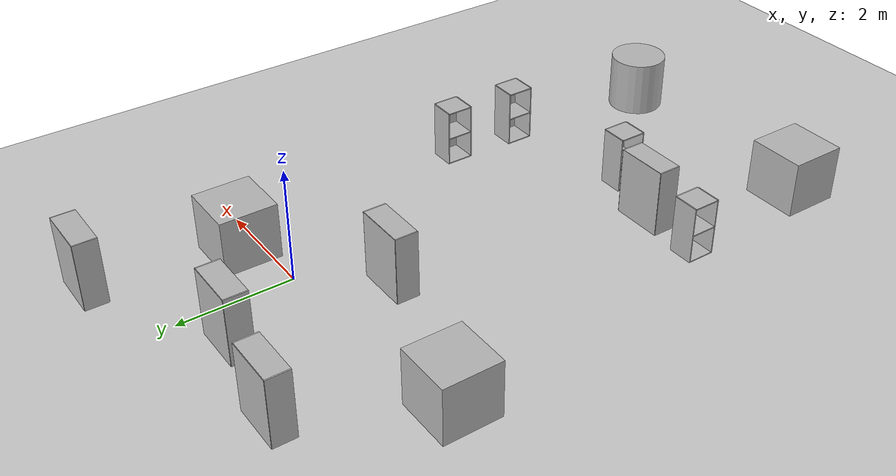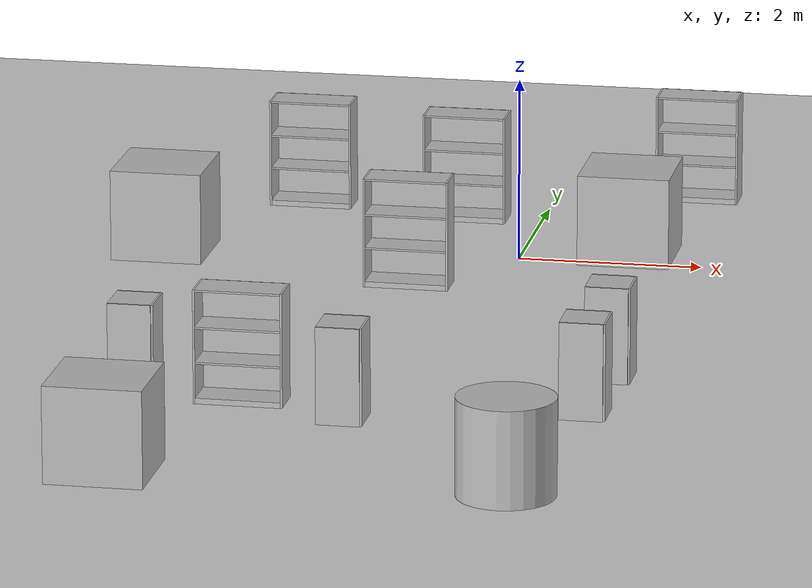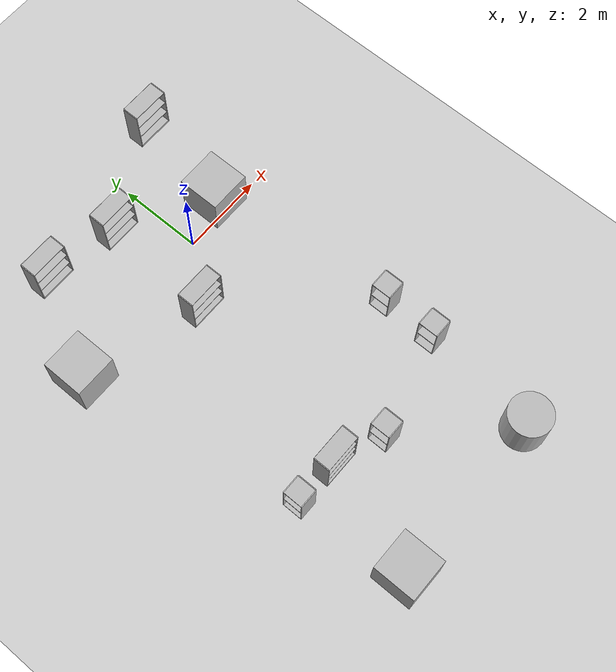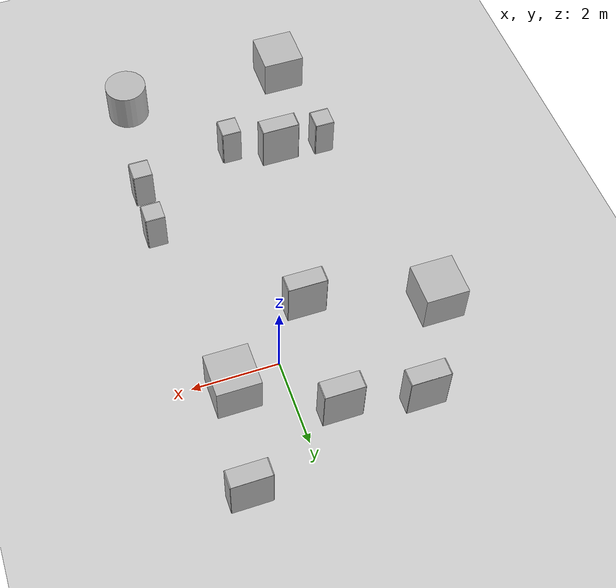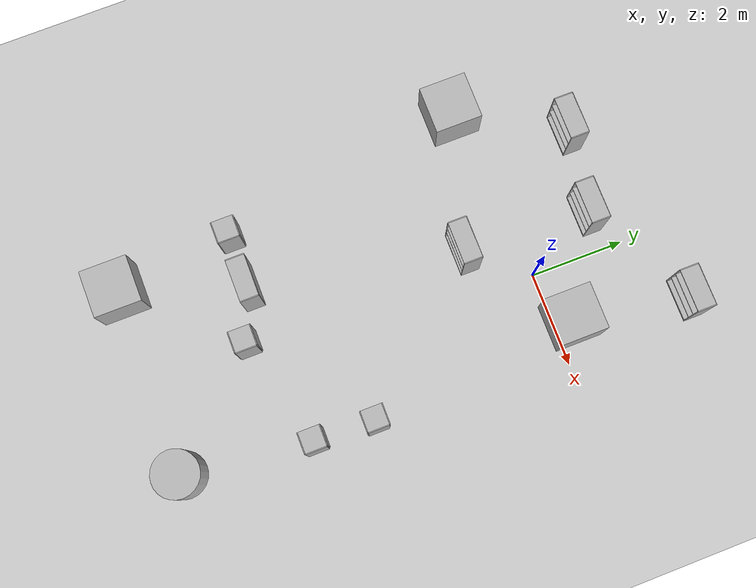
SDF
<sdf version="1.7">
 <world name="default">
  <model name="ground_plane">
   <static>1</static>
   <link name="link">
    <collision name="collision">
     <geometry><plane><normal>0 0 1</normal><size>100 100</size></plane></geometry>
     <surface><friction><ode><mu>100</mu><mu2>50</mu2></ode></friction></surface>
    </collision>
    <visual name="visual">
     <cast_shadows>0</cast_shadows>
     <geometry><plane><normal>0 0 1</normal><size>100 100</size></plane></geometry>
    </visual>
   </link>
  </model>
  <model name="unit_box_1">
   <pose>1.15759 0.350175 0.5 0 -0 0</pose>
   <link name="link">
    <inertial>
     <mass>1</mass>
     <inertia>
      <ixx>0.166667</ixx>
      <ixy>0</ixy>
      <ixz>0</ixz>
      <iyy>0.166667</iyy>
      <iyz>0</iyz>
      <izz>0.166667</izz>
     </inertia>
    </inertial>
    <collision name="collision"><geometry><box><size>1 1 1</size></box></geometry></collision>
    <visual name="visual"><geometry><box><size>1 1 1</size></box></geometry></visual>
   </link>
  </model>
  <model name="bookshelf_3">
   <static>1</static>
   <link name="link">
    <inertial><mass>1</mass></inertial>
    <collision name="back">
     <pose>0 0.005 0.6 0 -0 0</pose>
     <geometry><box><size>0.9 0.01 1.2</size></box></geometry>
    </collision>
    <visual name="visual1">
     <pose>0 0.005 0.6 0 -0 0</pose>
     <geometry><box><size>0.9 0.01 1.2</size></box></geometry>
    </visual>
    <collision name="left_side">
     <pose>0.45 -0.195 0.6 0 -0 0</pose>
     <geometry><box><size>0.02 0.4 1.2</size></box></geometry>
    </collision>
    <visual name="visual2">
     <pose>0.45 -0.195 0.6 0 -0 0</pose>
     <geometry><box><size>0.02 0.4 1.2</size></box></geometry>
    </visual>
    <collision name="right_side">
     <pose>-0.45 -0.195 0.6 0 -0 0</pose>
     <geometry><box><size>0.02 0.4 1.2</size></box></geometry>
    </collision>
    <visual name="visual3">
     <pose>-0.45 -0.195 0.6 0 -0 0</pose>
     <geometry><box><size>0.02 0.4 1.2</size></box></geometry>
    </visual>
    <collision name="bottom">
     <pose>0 -0.195 0.03 0 -0 0</pose>
     <geometry><box><size>0.88 0.4 0.06</size></box></geometry>
    </collision>
    <visual name="visual4">
     <pose>0 -0.195 0.03 0 -0 0</pose>
     <geometry><box><size>0.88 0.4 0.06</size></box></geometry>
    </visual>
    <collision name="top">
     <pose>0 -0.195 1.19 0 -0 0</pose>
     <geometry><box><size>0.88 0.4 0.02</size></box></geometry>
    </collision>
    <visual name="visual5">
     <pose>0 -0.195 1.19 0 -0 0</pose>
     <geometry><box><size>0.88 0.4 0.02</size></box></geometry>
    </visual>
    <collision name="low_shelf">
     <pose>0 -0.195 0.43 0 -0 0</pose>
     <geometry><box><size>0.88 0.4 0.02</size></box></geometry>
    </collision>
    <visual name="visual6">
     <pose>0 -0.195 0.43 0 -0 0</pose>
     <geometry><box><size>0.88 0.4 0.02</size></box></geometry>
    </visual>
    <collision name="high_shelf">
     <pose>0 -0.195 0.8 0 -0 0</pose>
     <geometry><box><size>0.88 0.4 0.02</size></box></geometry>
    </collision>
    <visual name="visual7">
     <pose>0 -0.195 0.8 0 -0 0</pose>
     <geometry><box><size>0.88 0.4 0.02</size></box></geometry>
    </visual>
   </link>
   <pose>-0.852454 1.70987 0 0 -0 0</pose>
  </model>
  <model name="bookshelf_4">
   <static>1</static>
   <link name="link">
    <inertial><mass>1</mass></inertial>
    <collision name="back">
     <pose>0 0.005 0.6 0 -0 0</pose>
     <geometry><box><size>0.9 0.01 1.2</size></box></geometry>
    </collision>
    <visual name="visual1">
     <pose>0 0.005 0.6 0 -0 0</pose>
     <geometry><box><size>0.9 0.01 1.2</size></box></geometry>
    </visual>
    <collision name="left_side">
     <pose>0.45 -0.195 0.6 0 -0 0</pose>
     <geometry><box><size>0.02 0.4 1.2</size></box></geometry>
    </collision>
    <visual name="visual2">
     <pose>0.45 -0.195 0.6 0 -0 0</pose>
     <geometry><box><size>0.02 0.4 1.2</size></box></geometry>
    </visual>
    <collision name="right_side">
     <pose>-0.45 -0.195 0.6 0 -0 0</pose>
     <geometry><box><size>0.02 0.4 1.2</size></box></geometry>
    </collision>
    <visual name="visual3">
     <pose>-0.45 -0.195 0.6 0 -0 0</pose>
     <geometry><box><size>0.02 0.4 1.2</size></box></geometry>
    </visual>
    <collision name="bottom">
     <pose>0 -0.195 0.03 0 -0 0</pose>
     <geometry><box><size>0.88 0.4 0.06</size></box></geometry>
    </collision>
    <visual name="visual4">
     <pose>0 -0.195 0.03 0 -0 0</pose>
     <geometry><box><size>0.88 0.4 0.06</size></box></geometry>
    </visual>
    <collision name="top">
     <pose>0 -0.195 1.19 0 -0 0</pose>
     <geometry><box><size>0.88 0.4 0.02</size></box></geometry>
    </collision>
    <visual name="visual5">
     <pose>0 -0.195 1.19 0 -0 0</pose>
     <geometry><box><size>0.88 0.4 0.02</size></box></geometry>
    </visual>
    <collision name="low_shelf">
     <pose>0 -0.195 0.43 0 -0 0</pose>
     <geometry><box><size>0.88 0.4 0.02</size></box></geometry>
    </collision>
    <visual name="visual6">
     <pose>0 -0.195 0.43 0 -0 0</pose>
     <geometry><box><size>0.88 0.4 0.02</size></box></geometry>
    </visual>
    <collision name="high_shelf">
     <pose>0 -0.195 0.8 0 -0 0</pose>
     <geometry><box><size>0.88 0.4 0.02</size></box></geometry>
    </collision>
    <visual name="visual7">
     <pose>0 -0.195 0.8 0 -0 0</pose>
     <geometry><box><size>0.88 0.4 0.02</size></box></geometry>
    </visual>
   </link>
   <pose>1.56404 2.96614 0 0 -0 0</pose>
  </model>
  <model name="unit_box_2">
   <pose>-2.71932 -8.17499 0.5 0 -0 5e-06</pose>
   <link name="link">
    <inertial>
     <mass>1</mass>
     <inertia>
      <ixx>0.166667</ixx>
      <ixy>0</ixy>
      <ixz>0</ixz>
      <iyy>0.166667</iyy>
      <iyz>0</iyz>
      <izz>0.166667</izz>
     </inertia>
    </inertial>
    <collision name="collision"><geometry><box><size>1 1 1</size></box></geometry></collision>
    <visual name="visual"><geometry><box><size>1 1 1</size></box></geometry></visual>
   </link>
  </model>
  <model name="unit_cylinder_0">
   <pose>1.27501 -8.175 0.5 0 0 -0.005918</pose>
   <link name="link">
    <inertial>
     <mass>1</mass>
     <inertia><ixx>0.145833</ixx><ixy>0</ixy><ixz>0</ixz><iyy>0.145833</iyy><iyz>0</iyz><izz>0.125</izz></inertia>
    </inertial>
    <collision name="collision">
     <geometry><cylinder><radius>0.5</radius><length>1</length></cylinder></geometry>
    </collision>
    <visual name="visual">
     <geometry><cylinder><radius>0.5</radius><length>1</length></cylinder></geometry>
    </visual>
   </link>
  </model>
  <model name="cabinet_2">
   <static>1</static>
   <link name="cabinet_bottom_plate">
    <inertial>
     <pose>0 0 -1 0 -0 0</pose>
     <inertia><ixx>2.05</ixx><ixy>0</ixy><ixz>0</ixz><iyy>2.05</iyy><iyz>0</iyz><izz>2.05</izz></inertia>
     <mass>25</mass>
    </inertial>
    <collision name="cabinet_bottom_plate_geom">
     <pose>0 0 0.01 0 -0 0</pose>
     <geometry><box><size>0.45 0.45 0.02</size></box></geometry>
    </collision>
    <visual name="cabinet_bottom_plate_geom_visual">
     <pose>0 0 0.01 0 -0 0</pose>
     <geometry><box><size>0.45 0.45 0.02</size></box></geometry>
    </visual>
    <collision name="cabinet_bottom_plate_geom_cabinet_back_plate">
     <pose>0.235 0 0.51 0 -0 0</pose>
     <geometry><box><size>0.02 0.45 1.02</size></box></geometry>
    </collision>
    <visual name="cabinet_bottom_plate_geom_cabinet_back_plate_visual">
     <pose>0.235 0 0.51 0 -0 0</pose>
     <geometry><box><size>0.02 0.45 1.02</size></box></geometry>
    </visual>
    <collision name="cabinet_bottom_plate_geom_cabinet_left_plate">
     <pose>0 0.235 0.51 0 -0 0</pose>
     <geometry><box><size>0.45 0.02 1.02</size></box></geometry>
    </collision>
    <visual name="cabinet_bottom_plate_geom_cabinet_left_plate_visual">
     <pose>0 0.235 0.51 0 -0 0</pose>
     <geometry><box><size>0.45 0.02 1.02</size></box></geometry>
    </visual>
    <collision name="cabinet_bottom_plate_geom_cabinet_middle_plate">
     <pose>0 0 0.51 0 -0 0</pose>
     <geometry><box><size>0.45 0.45 0.02</size></box></geometry>
    </collision>
    <visual name="cabinet_bottom_plate_geom_cabinet_middle_plate_visual">
     <pose>0 0 0.51 0 -0 0</pose>
     <geometry><box><size>0.45 0.45 0.02</size></box></geometry>
    </visual>
    <collision name="cabinet_bottom_plate_geom_cabinet_right_plate">
     <pose>0 -0.235 0.51 0 -0 0</pose>
     <geometry><box><size>0.45 0.02 1.02</size></box></geometry>
    </collision>
    <visual name="cabinet_bottom_plate_geom_cabinet_right_plate_visual">
     <pose>0 -0.235 0.51 0 -0 0</pose>
     <geometry><box><size>0.45 0.02 1.02</size></box></geometry>
    </visual>
    <collision name="cabinet_bottom_plate_geom_cabinet_top_plate">
     <pose>0 0 1.01 0 -0 0</pose>
     <geometry><box><size>0.45 0.45 0.02</size></box></geometry>
    </collision>
    <visual name="cabinet_bottom_plate_geom_cabinet_top_plate_visual">
     <pose>0 0 1.01 0 -0 0</pose>
     <geometry><box><size>0.45 0.45 0.02</size></box></geometry>
    </visual>
   </link>
   <pose>-2.99524 -5.62279 0 0 -0 0</pose>
  </model>
  <model name="bookshelf_5">
   <static>1</static>
   <link name="link">
    <inertial><mass>1</mass></inertial>
    <collision name="back">
     <pose>0 0.005 0.6 0 -0 0</pose>
     <geometry><box><size>0.9 0.01 1.2</size></box></geometry>
    </collision>
    <visual name="visual1">
     <pose>0 0.005 0.6 0 -0 0</pose>
     <geometry><box><size>0.9 0.01 1.2</size></box></geometry>
    </visual>
    <collision name="left_side">
     <pose>0.45 -0.195 0.6 0 -0 0</pose>
     <geometry><box><size>0.02 0.4 1.2</size></box></geometry>
    </collision>
    <visual name="visual2">
     <pose>0.45 -0.195 0.6 0 -0 0</pose>
     <geometry><box><size>0.02 0.4 1.2</size></box></geometry>
    </visual>
    <collision name="right_side">
     <pose>-0.45 -0.195 0.6 0 -0 0</pose>
     <geometry><box><size>0.02 0.4 1.2</size></box></geometry>
    </collision>
    <visual name="visual3">
     <pose>-0.45 -0.195 0.6 0 -0 0</pose>
     <geometry><box><size>0.02 0.4 1.2</size></box></geometry>
    </visual>
    <collision name="bottom">
     <pose>0 -0.195 0.03 0 -0 0</pose>
     <geometry><box><size>0.88 0.4 0.06</size></box></geometry>
    </collision>
    <visual name="visual4">
     <pose>0 -0.195 0.03 0 -0 0</pose>
     <geometry><box><size>0.88 0.4 0.06</size></box></geometry>
    </visual>
    <collision name="top">
     <pose>0 -0.195 1.19 0 -0 0</pose>
     <geometry><box><size>0.88 0.4 0.02</size></box></geometry>
    </collision>
    <visual name="visual5">
     <pose>0 -0.195 1.19 0 -0 0</pose>
     <geometry><box><size>0.88 0.4 0.02</size></box></geometry>
    </visual>
    <collision name="low_shelf">
     <pose>0 -0.195 0.43 0 -0 0</pose>
     <geometry><box><size>0.88 0.4 0.02</size></box></geometry>
    </collision>
    <visual name="visual6">
     <pose>0 -0.195 0.43 0 -0 0</pose>
     <geometry><box><size>0.88 0.4 0.02</size></box></geometry>
    </visual>
    <collision name="high_shelf">
     <pose>0 -0.195 0.8 0 -0 0</pose>
     <geometry><box><size>0.88 0.4 0.02</size></box></geometry>
    </collision>
    <visual name="visual7">
     <pose>0 -0.195 0.8 0 -0 0</pose>
     <geometry><box><size>0.88 0.4 0.02</size></box></geometry>
    </visual>
   </link>
   <pose>-1.8833 -5.43957 0 0 -0 0</pose>
  </model>
  <model name="cabinet_4">
   <static>1</static>
   <link name="cabinet_bottom_plate">
    <inertial>
     <pose>0 0 -1 0 -0 0</pose>
     <inertia><ixx>2.05</ixx><ixy>0</ixy><ixz>0</ixz><iyy>2.05</iyy><iyz>0</iyz><izz>2.05</izz></inertia>
     <mass>25</mass>
    </inertial>
    <collision name="cabinet_bottom_plate_geom">
     <pose>0 0 0.01 0 -0 0</pose>
     <geometry><box><size>0.45 0.45 0.02</size></box></geometry>
    </collision>
    <visual name="cabinet_bottom_plate_geom_visual">
     <pose>0 0 0.01 0 -0 0</pose>
     <geometry><box><size>0.45 0.45 0.02</size></box></geometry>
    </visual>
    <collision name="cabinet_bottom_plate_geom_cabinet_back_plate">
     <pose>0.235 0 0.51 0 -0 0</pose>
     <geometry><box><size>0.02 0.45 1.02</size></box></geometry>
    </collision>
    <visual name="cabinet_bottom_plate_geom_cabinet_back_plate_visual">
     <pose>0.235 0 0.51 0 -0 0</pose>
     <geometry><box><size>0.02 0.45 1.02</size></box></geometry>
    </visual>
    <collision name="cabinet_bottom_plate_geom_cabinet_left_plate">
     <pose>0 0.235 0.51 0 -0 0</pose>
     <geometry><box><size>0.45 0.02 1.02</size></box></geometry>
    </collision>
    <visual name="cabinet_bottom_plate_geom_cabinet_left_plate_visual">
     <pose>0 0.235 0.51 0 -0 0</pose>
     <geometry><box><size>0.45 0.02 1.02</size></box></geometry>
    </visual>
    <collision name="cabinet_bottom_plate_geom_cabinet_middle_plate">
     <pose>0 0 0.51 0 -0 0</pose>
     <geometry><box><size>0.45 0.45 0.02</size></box></geometry>
    </collision>
    <visual name="cabinet_bottom_plate_geom_cabinet_middle_plate_visual">
     <pose>0 0 0.51 0 -0 0</pose>
     <geometry><box><size>0.45 0.45 0.02</size></box></geometry>
    </visual>
    <collision name="cabinet_bottom_plate_geom_cabinet_right_plate">
     <pose>0 -0.235 0.51 0 -0 0</pose>
     <geometry><box><size>0.45 0.02 1.02</size></box></geometry>
    </collision>
    <visual name="cabinet_bottom_plate_geom_cabinet_right_plate_visual">
     <pose>0 -0.235 0.51 0 -0 0</pose>
     <geometry><box><size>0.45 0.02 1.02</size></box></geometry>
    </visual>
    <collision name="cabinet_bottom_plate_geom_cabinet_top_plate">
     <pose>0 0 1.01 0 -0 0</pose>
     <geometry><box><size>0.45 0.45 0.02</size></box></geometry>
    </collision>
    <visual name="cabinet_bottom_plate_geom_cabinet_top_plate_visual">
     <pose>0 0 1.01 0 -0 0</pose>
     <geometry><box><size>0.45 0.45 0.02</size></box></geometry>
    </visual>
   </link>
   <pose>1.65169 -4.15383 0 0 -0 0</pose>
  </model>
  <model name="cabinet_5">
   <static>1</static>
   <link name="cabinet_bottom_plate">
    <inertial>
     <pose>0 0 -1 0 -0 0</pose>
     <inertia><ixx>2.05</ixx><ixy>0</ixy><ixz>0</ixz><iyy>2.05</iyy><iyz>0</iyz><izz>2.05</izz></inertia>
     <mass>25</mass>
    </inertial>
    <collision name="cabinet_bottom_plate_geom">
     <pose>0 0 0.01 0 -0 0</pose>
     <geometry><box><size>0.45 0.45 0.02</size></box></geometry>
    </collision>
    <visual name="cabinet_bottom_plate_geom_visual">
     <pose>0 0 0.01 0 -0 0</pose>
     <geometry><box><size>0.45 0.45 0.02</size></box></geometry>
    </visual>
    <collision name="cabinet_bottom_plate_geom_cabinet_back_plate">
     <pose>0.235 0 0.51 0 -0 0</pose>
     <geometry><box><size>0.02 0.45 1.02</size></box></geometry>
    </collision>
    <visual name="cabinet_bottom_plate_geom_cabinet_back_plate_visual">
     <pose>0.235 0 0.51 0 -0 0</pose>
     <geometry><box><size>0.02 0.45 1.02</size></box></geometry>
    </visual>
    <collision name="cabinet_bottom_plate_geom_cabinet_left_plate">
     <pose>0 0.235 0.51 0 -0 0</pose>
     <geometry><box><size>0.45 0.02 1.02</size></box></geometry>
    </collision>
    <visual name="cabinet_bottom_plate_geom_cabinet_left_plate_visual">
     <pose>0 0.235 0.51 0 -0 0</pose>
     <geometry><box><size>0.45 0.02 1.02</size></box></geometry>
    </visual>
    <collision name="cabinet_bottom_plate_geom_cabinet_middle_plate">
     <pose>0 0 0.51 0 -0 0</pose>
     <geometry><box><size>0.45 0.45 0.02</size></box></geometry>
    </collision>
    <visual name="cabinet_bottom_plate_geom_cabinet_middle_plate_visual">
     <pose>0 0 0.51 0 -0 0</pose>
     <geometry><box><size>0.45 0.45 0.02</size></box></geometry>
    </visual>
    <collision name="cabinet_bottom_plate_geom_cabinet_right_plate">
     <pose>0 -0.235 0.51 0 -0 0</pose>
     <geometry><box><size>0.45 0.02 1.02</size></box></geometry>
    </collision>
    <visual name="cabinet_bottom_plate_geom_cabinet_right_plate_visual">
     <pose>0 -0.235 0.51 0 -0 0</pose>
     <geometry><box><size>0.45 0.02 1.02</size></box></geometry>
    </visual>
    <collision name="cabinet_bottom_plate_geom_cabinet_top_plate">
     <pose>0 0 1.01 0 -0 0</pose>
     <geometry><box><size>0.45 0.45 0.02</size></box></geometry>
    </collision>
    <visual name="cabinet_bottom_plate_geom_cabinet_top_plate_visual">
     <pose>0 0 1.01 0 -0 0</pose>
     <geometry><box><size>0.45 0.45 0.02</size></box></geometry>
    </visual>
   </link>
   <pose>1.60068 -5.44675 0 0 -0 0</pose>
  </model>
  <model name="cabinet_6">
   <static>1</static>
   <link name="cabinet_bottom_plate">
    <inertial>
     <pose>0 0 -1 0 -0 0</pose>
     <inertia><ixx>2.05</ixx><ixy>0</ixy><ixz>0</ixz><iyy>2.05</iyy><iyz>0</iyz><izz>2.05</izz></inertia>
     <mass>25</mass>
    </inertial>
    <collision name="cabinet_bottom_plate_geom">
     <pose>0 0 0.01 0 -0 0</pose>
     <geometry><box><size>0.45 0.45 0.02</size></box></geometry>
    </collision>
    <visual name="cabinet_bottom_plate_geom_visual">
     <pose>0 0 0.01 0 -0 0</pose>
     <geometry><box><size>0.45 0.45 0.02</size></box></geometry>
    </visual>
    <collision name="cabinet_bottom_plate_geom_cabinet_back_plate">
     <pose>0.235 0 0.51 0 -0 0</pose>
     <geometry><box><size>0.02 0.45 1.02</size></box></geometry>
    </collision>
    <visual name="cabinet_bottom_plate_geom_cabinet_back_plate_visual">
     <pose>0.235 0 0.51 0 -0 0</pose>
     <geometry><box><size>0.02 0.45 1.02</size></box></geometry>
    </visual>
    <collision name="cabinet_bottom_plate_geom_cabinet_left_plate">
     <pose>0 0.235 0.51 0 -0 0</pose>
     <geometry><box><size>0.45 0.02 1.02</size></box></geometry>
    </collision>
    <visual name="cabinet_bottom_plate_geom_cabinet_left_plate_visual">
     <pose>0 0.235 0.51 0 -0 0</pose>
     <geometry><box><size>0.45 0.02 1.02</size></box></geometry>
    </visual>
    <collision name="cabinet_bottom_plate_geom_cabinet_middle_plate">
     <pose>0 0 0.51 0 -0 0</pose>
     <geometry><box><size>0.45 0.45 0.02</size></box></geometry>
    </collision>
    <visual name="cabinet_bottom_plate_geom_cabinet_middle_plate_visual">
     <pose>0 0 0.51 0 -0 0</pose>
     <geometry><box><size>0.45 0.45 0.02</size></box></geometry>
    </visual>
    <collision name="cabinet_bottom_plate_geom_cabinet_right_plate">
     <pose>0 -0.235 0.51 0 -0 0</pose>
     <geometry><box><size>0.45 0.02 1.02</size></box></geometry>
    </collision>
    <visual name="cabinet_bottom_plate_geom_cabinet_right_plate_visual">
     <pose>0 -0.235 0.51 0 -0 0</pose>
     <geometry><box><size>0.45 0.02 1.02</size></box></geometry>
    </visual>
    <collision name="cabinet_bottom_plate_geom_cabinet_top_plate">
     <pose>0 0 1.01 0 -0 0</pose>
     <geometry><box><size>0.45 0.45 0.02</size></box></geometry>
    </collision>
    <visual name="cabinet_bottom_plate_geom_cabinet_top_plate_visual">
     <pose>0 0 1.01 0 -0 0</pose>
     <geometry><box><size>0.45 0.45 0.02</size></box></geometry>
    </visual>
   </link>
   <pose>-0.763576 -6.05473 0 0 -0 0</pose>
  </model>
  <model name="bookshelf_6">
   <static>1</static>
   <link name="link">
    <inertial><mass>1</mass></inertial>
    <collision name="back">
     <pose>0 0.005 0.6 0 -0 0</pose>
     <geometry><box><size>0.9 0.01 1.2</size></box></geometry>
    </collision>
    <visual name="visual1">
     <pose>0 0.005 0.6 0 -0 0</pose>
     <geometry><box><size>0.9 0.01 1.2</size></box></geometry>
    </visual>
    <collision name="left_side">
     <pose>0.45 -0.195 0.6 0 -0 0</pose>
     <geometry><box><size>0.02 0.4 1.2</size></box></geometry>
    </collision>
    <visual name="visual2">
     <pose>0.45 -0.195 0.6 0 -0 0</pose>
     <geometry><box><size>0.02 0.4 1.2</size></box></geometry>
    </visual>
    <collision name="right_side">
     <pose>-0.45 -0.195 0.6 0 -0 0</pose>
     <geometry><box><size>0.02 0.4 1.2</size></box></geometry>
    </collision>
    <visual name="visual3">
     <pose>-0.45 -0.195 0.6 0 -0 0</pose>
     <geometry><box><size>0.02 0.4 1.2</size></box></geometry>
    </visual>
    <collision name="bottom">
     <pose>0 -0.195 0.03 0 -0 0</pose>
     <geometry><box><size>0.88 0.4 0.06</size></box></geometry>
    </collision>
    <visual name="visual4">
     <pose>0 -0.195 0.03 0 -0 0</pose>
     <geometry><box><size>0.88 0.4 0.06</size></box></geometry>
    </visual>
    <collision name="top">
     <pose>0 -0.195 1.19 0 -0 0</pose>
     <geometry><box><size>0.88 0.4 0.02</size></box></geometry>
    </collision>
    <visual name="visual5">
     <pose>0 -0.195 1.19 0 -0 0</pose>
     <geometry><box><size>0.88 0.4 0.02</size></box></geometry>
    </visual>
    <collision name="low_shelf">
     <pose>0 -0.195 0.43 0 -0 0</pose>
     <geometry><box><size>0.88 0.4 0.02</size></box></geometry>
    </collision>
    <visual name="visual6">
     <pose>0 -0.195 0.43 0 -0 0</pose>
     <geometry><box><size>0.88 0.4 0.02</size></box></geometry>
    </visual>
    <collision name="high_shelf">
     <pose>0 -0.195 0.8 0 -0 0</pose>
     <geometry><box><size>0.88 0.4 0.02</size></box></geometry>
    </collision>
    <visual name="visual7">
     <pose>0 -0.195 0.8 0 -0 0</pose>
     <geometry><box><size>0.88 0.4 0.02</size></box></geometry>
    </visual>
   </link>
   <pose>-2.64449 1.9967 0 0 -0 0</pose>
  </model>
  <model name="unit_box_3">
   <pose>-3.85193 -0.375276 0.5 -0 -0 -0</pose>
   <link name="link">
    <inertial>
     <mass>1</mass>
     <inertia>
      <ixx>0.166667</ixx>
      <ixy>0</ixy>
      <ixz>0</ixz>
      <iyy>0.166667</iyy>
      <iyz>0</iyz>
      <izz>0.166667</izz>
     </inertia>
    </inertial>
    <collision name="collision"><geometry><box><size>1 1 1</size></box></geometry></collision>
    <visual name="visual"><geometry><box><size>1 1 1</size></box></geometry></visual>
   </link>
  </model>
  <model name="bookshelf_3_clone">
   <static>1</static>
   <link name="link">
    <inertial><mass>1</mass></inertial>
    <collision name="back">
     <pose>0 0.005 0.6 0 -0 0</pose>
     <geometry><box><size>0.9 0.01 1.2</size></box></geometry>
    </collision>
    <visual name="visual1">
     <pose>0 0.005 0.6 0 -0 0</pose>
     <geometry><box><size>0.9 0.01 1.2</size></box></geometry>
    </visual>
    <collision name="left_side">
     <pose>0.45 -0.195 0.6 0 -0 0</pose>
     <geometry><box><size>0.02 0.4 1.2</size></box></geometry>
    </collision>
    <visual name="visual2">
     <pose>0.45 -0.195 0.6 0 -0 0</pose>
     <geometry><box><size>0.02 0.4 1.2</size></box></geometry>
    </visual>
    <collision name="right_side">
     <pose>-0.45 -0.195 0.6 0 -0 0</pose>
     <geometry><box><size>0.02 0.4 1.2</size></box></geometry>
    </collision>
    <visual name="visual3">
     <pose>-0.45 -0.195 0.6 0 -0 0</pose>
     <geometry><box><size>0.02 0.4 1.2</size></box></geometry>
    </visual>
    <collision name="bottom">
     <pose>0 -0.195 0.03 0 -0 0</pose>
     <geometry><box><size>0.88 0.4 0.06</size></box></geometry>
    </collision>
    <visual name="visual4">
     <pose>0 -0.195 0.03 0 -0 0</pose>
     <geometry><box><size>0.88 0.4 0.06</size></box></geometry>
    </visual>
    <collision name="top">
     <pose>0 -0.195 1.19 0 -0 0</pose>
     <geometry><box><size>0.88 0.4 0.02</size></box></geometry>
    </collision>
    <visual name="visual5">
     <pose>0 -0.195 1.19 0 -0 0</pose>
     <geometry><box><size>0.88 0.4 0.02</size></box></geometry>
    </visual>
    <collision name="low_shelf">
     <pose>0 -0.195 0.43 0 -0 0</pose>
     <geometry><box><size>0.88 0.4 0.02</size></box></geometry>
    </collision>
    <visual name="visual6">
     <pose>0 -0.195 0.43 0 -0 0</pose>
     <geometry><box><size>0.88 0.4 0.02</size></box></geometry>
    </visual>
    <collision name="high_shelf">
     <pose>0 -0.195 0.8 0 -0 0</pose>
     <geometry><box><size>0.88 0.4 0.02</size></box></geometry>
    </collision>
    <visual name="visual7">
     <pose>0 -0.195 0.8 0 -0 0</pose>
     <geometry><box><size>0.88 0.4 0.02</size></box></geometry>
    </visual>
   </link>
   <pose>-1 -1 0 0 -0 0</pose>
  </model>
 </world>
</sdf>
